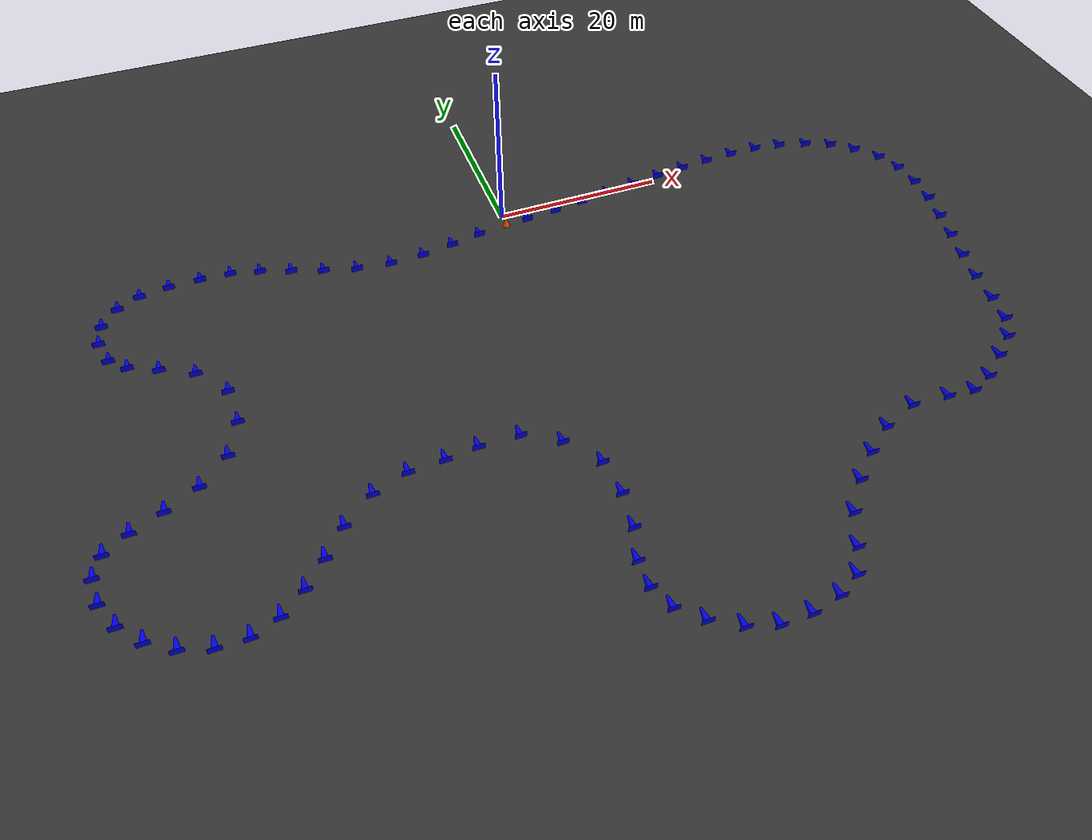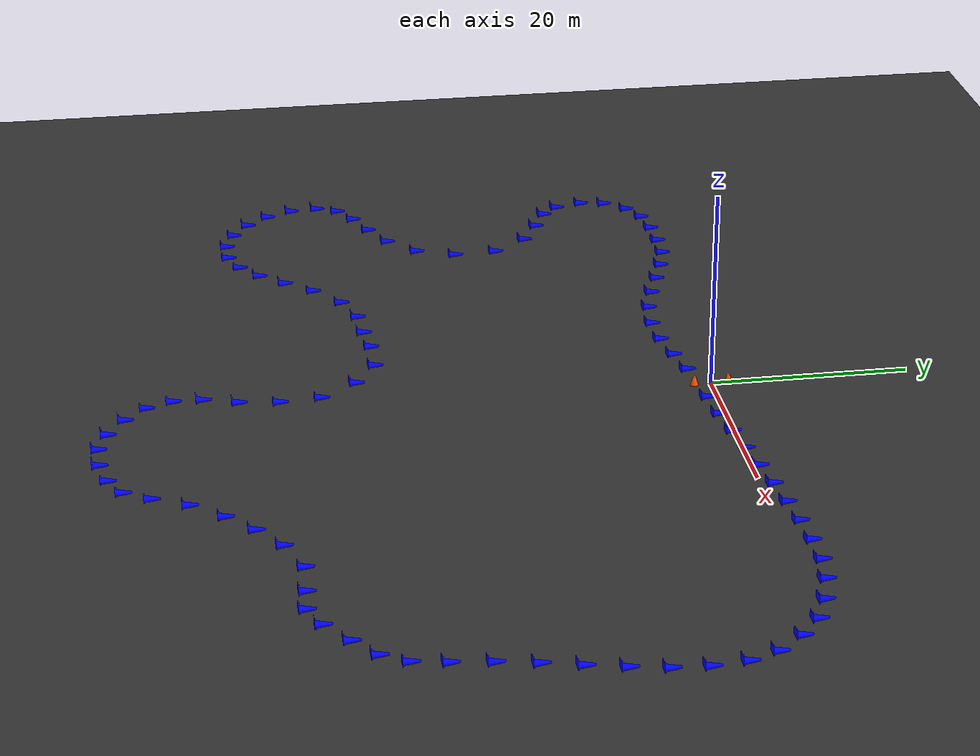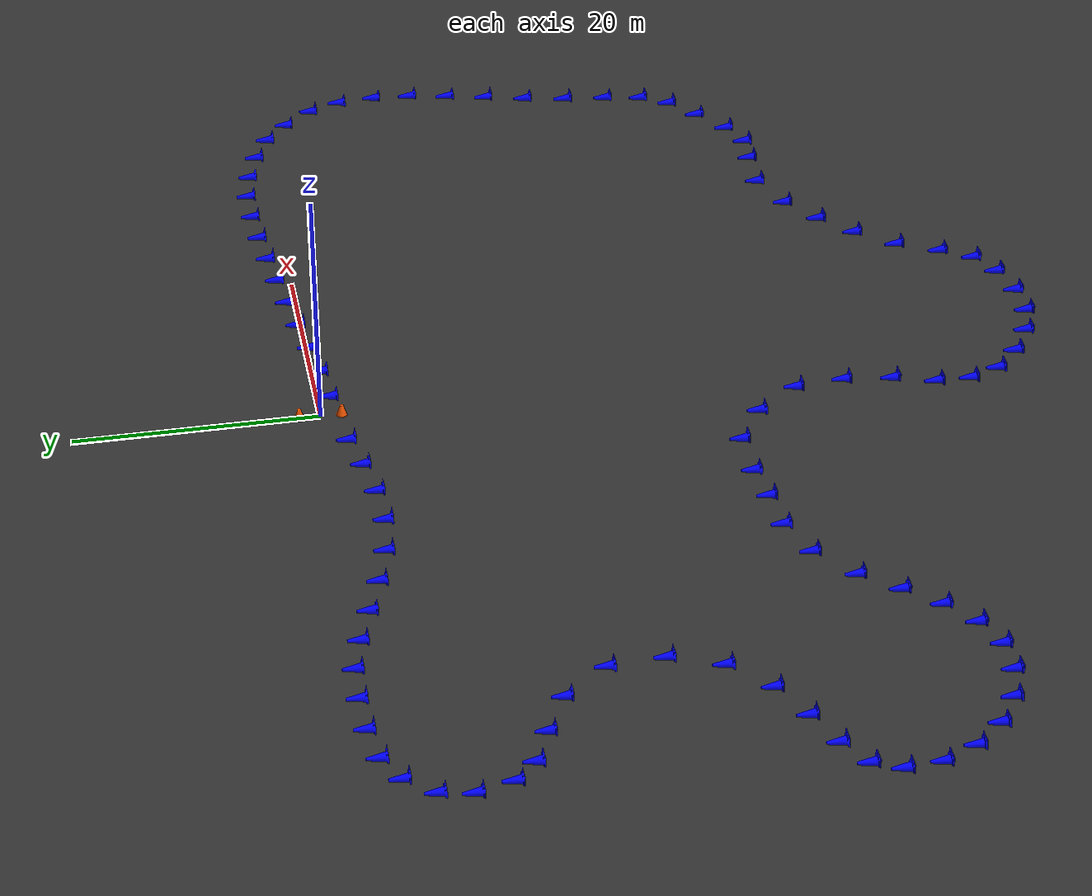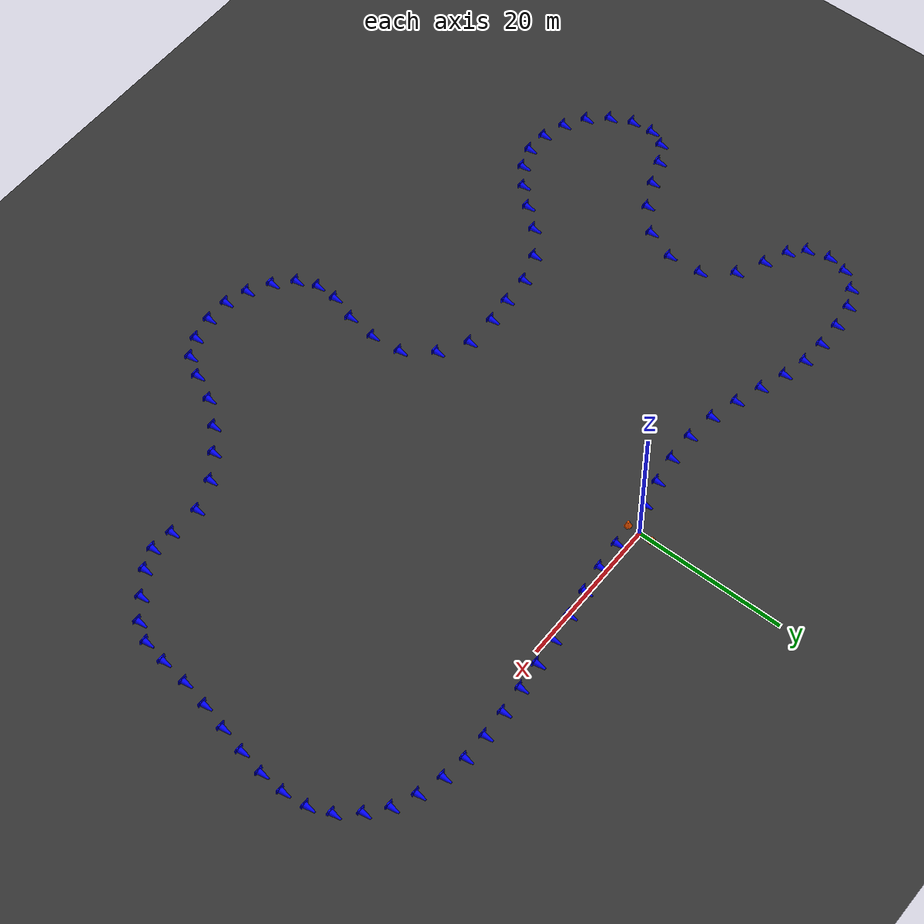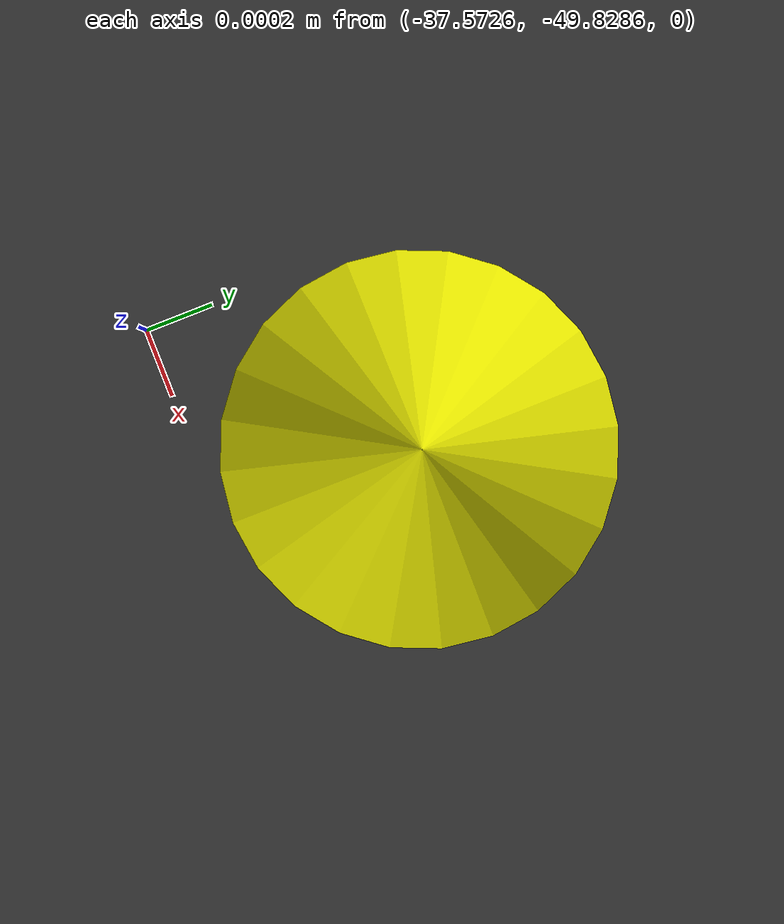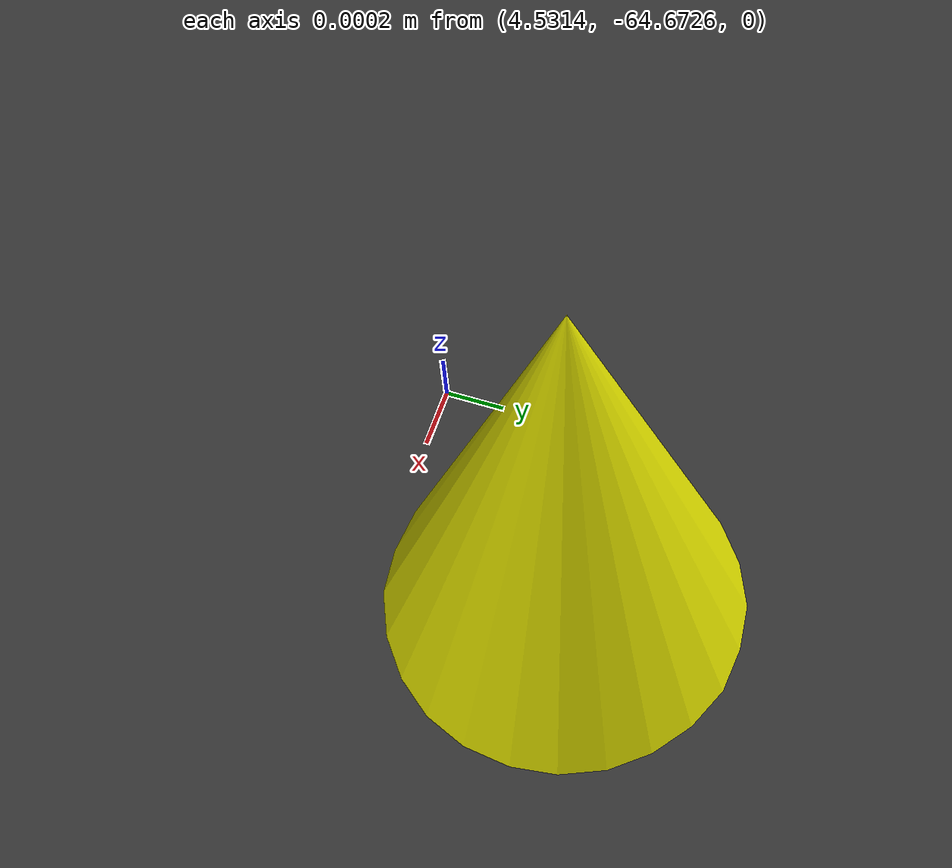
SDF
<sdf version="1.7">
 <world name="generated_world">
  <scene><sky><clouds><speed>12</speed></clouds></sky><grid>false</grid><shadows>1</shadows></scene>
  <physics type="ode">
   <max_step_size>0.001</max_step_size>
   <real_time_update_rate>1000</real_time_update_rate>
  </physics>
  <plugin filename="gz-sim-physics-system" name="gz::sim::systems::Physics"/>
  <plugin filename="gz-sim-user-commands-system" name="gz::sim::systems::UserCommands"/>
  <plugin filename="gz-sim-scene-broadcaster-system" name="gz::sim::systems::SceneBroadcaster"/>
  <plugin filename="gz-sim-contact-system" name="gz::sim::systems::Contact"/>
  <light name="sun" type="directional">
   <pose>0 0 10 0 0 0</pose>
   <diffuse>1 1 1 1</diffuse>
   <specular>0.2 0.2 0.2 1</specular>
   <direction>-0.5 0.2 -1</direction>
   <attenuation>
    <range>300</range>
    <constant>0.9</constant>
    <linear>0.01</linear>
    <quadratic>0.001</quadratic>
   </attenuation>
  </light>
  <model name="asphalt_ground">
   <static>1</static>
   <link name="link">
    <collision name="collision">
     <geometry><plane><normal>0 0 1</normal><size>300 300</size></plane></geometry>
     <surface><friction><ode><mu>100</mu><mu2>50</mu2></ode></friction></surface>
    </collision>
    <visual name="visual">
     <geometry><plane><normal>0 0 1</normal><size>300 300</size></plane></geometry>
     <material>
      <ambient>0.2 0.2 0.2 1</ambient>
      <diffuse>0.2 0.2 0.2 1</diffuse>
      <specular>0.1 0.1 0.1 1</specular>
     </material>
    </visual>
   </link>
  </model>
  <include><uri>model://cone_yellow</uri><name>cone_yellow_001</name><pose>2.761 1.924 0 0 0 0</pose></include>
  <include><uri>model://cone_yellow</uri><name>cone_yellow_002</name><pose>6.082 2.238 0 0 0 0</pose></include>
  <include><uri>model://cone_yellow</uri><name>cone_yellow_003</name><pose>9.714 2.728 0 0 0 0</pose></include>
  <include><uri>model://cone_yellow</uri><name>cone_yellow_004</name><pose>13.343 3.236 0 0 0 0</pose></include>
  <include><uri>model://cone_yellow</uri><name>cone_yellow_005</name><pose>16.992 3.733 0 0 0 0</pose></include>
  <include><uri>model://cone_yellow</uri><name>cone_yellow_006</name><pose>20.658 4.197 0 0 0 0</pose></include>
  <include><uri>model://cone_yellow</uri><name>cone_yellow_007</name><pose>24.330 4.608 0 0 0 0</pose></include>
  <include><uri>model://cone_yellow</uri><name>cone_yellow_008</name><pose>27.998 4.938 0 0 0 0</pose></include>
  <include><uri>model://cone_yellow</uri><name>cone_yellow_009</name><pose>31.738 5.146 0 0 0 0</pose></include>
  <include><uri>model://cone_yellow</uri><name>cone_yellow_010</name><pose>35.534 5.128 0 0 0 0</pose></include>
  <include><uri>model://cone_yellow</uri><name>cone_yellow_011</name><pose>39.480 4.555 0 0 0 0</pose></include>
  <include><uri>model://cone_yellow</uri><name>cone_yellow_012</name><pose>43.115 3.520 0 0 0 0</pose></include>
  <include><uri>model://cone_yellow</uri><name>cone_yellow_013</name><pose>46.774 1.903 0 0 0 0</pose></include>
  <include>
   <uri>model://cone_yellow</uri>
   <name>cone_yellow_014</name>
   <pose>49.954 -0.699 0 0 0 0</pose>
  </include>
  <include>
   <uri>model://cone_yellow</uri>
   <name>cone_yellow_015</name>
   <pose>52.499 -3.777 0 0 0 0</pose>
  </include>
  <include>
   <uri>model://cone_yellow</uri>
   <name>cone_yellow_016</name>
   <pose>54.072 -7.710 0 0 0 0</pose>
  </include>
  <include>
   <uri>model://cone_yellow</uri>
   <name>cone_yellow_017</name>
   <pose>54.478 -11.663 0 0 0 0</pose>
  </include>
  <include>
   <uri>model://cone_yellow</uri>
   <name>cone_yellow_018</name>
   <pose>54.219 -15.595 0 0 0 0</pose>
  </include>
  <include>
   <uri>model://cone_yellow</uri>
   <name>cone_yellow_019</name>
   <pose>53.518 -19.301 0 0 0 0</pose>
  </include>
  <include>
   <uri>model://cone_yellow</uri>
   <name>cone_yellow_020</name>
   <pose>52.670 -22.902 0 0 0 0</pose>
  </include>
  <include>
   <uri>model://cone_yellow</uri>
   <name>cone_yellow_021</name>
   <pose>51.803 -26.444 0 0 0 0</pose>
  </include>
  <include>
   <uri>model://cone_yellow</uri>
   <name>cone_yellow_022</name>
   <pose>51.103 -29.879 0 0 0 0</pose>
  </include>
  <include>
   <uri>model://cone_yellow</uri>
   <name>cone_yellow_023</name>
   <pose>50.642 -33.435 0 0 0 0</pose>
  </include>
  <include>
   <uri>model://cone_yellow</uri>
   <name>cone_yellow_024</name>
   <pose>49.904 -37.334 0 0 0 0</pose>
  </include>
  <include>
   <uri>model://cone_yellow</uri>
   <name>cone_yellow_025</name>
   <pose>47.665 -41.124 0 0 0 0</pose>
  </include>
  <include>
   <uri>model://cone_yellow</uri>
   <name>cone_yellow_026</name>
   <pose>44.582 -43.638 0 0 0 0</pose>
  </include>
  <include>
   <uri>model://cone_yellow</uri>
   <name>cone_yellow_027</name>
   <pose>41.616 -45.835 0 0 0 0</pose>
  </include>
  <include>
   <uri>model://cone_yellow</uri>
   <name>cone_yellow_028</name>
   <pose>37.628 -47.523 0 0 0 0</pose>
  </include>
  <include>
   <uri>model://cone_yellow</uri>
   <name>cone_yellow_029</name>
   <pose>33.393 -47.286 0 0 0 0</pose>
  </include>
  <include>
   <uri>model://cone_yellow</uri>
   <name>cone_yellow_030</name>
   <pose>30.263 -47.056 0 0 0 0</pose>
  </include>
  <include>
   <uri>model://cone_yellow</uri>
   <name>cone_yellow_031</name>
   <pose>27.596 -48.151 0 0 0 0</pose>
  </include>
  <include>
   <uri>model://cone_yellow</uri>
   <name>cone_yellow_032</name>
   <pose>24.838 -50.139 0 0 0 0</pose>
  </include>
  <include>
   <uri>model://cone_yellow</uri>
   <name>cone_yellow_033</name>
   <pose>22.243 -52.483 0 0 0 0</pose>
  </include>
  <include>
   <uri>model://cone_yellow</uri>
   <name>cone_yellow_034</name>
   <pose>20.177 -54.910 0 0 0 0</pose>
  </include>
  <include>
   <uri>model://cone_yellow</uri>
   <name>cone_yellow_035</name>
   <pose>18.652 -58.032 0 0 0 0</pose>
  </include>
  <include>
   <uri>model://cone_yellow</uri>
   <name>cone_yellow_036</name>
   <pose>16.358 -61.603 0 0 0 0</pose>
  </include>
  <include>
   <uri>model://cone_yellow</uri>
   <name>cone_yellow_037</name>
   <pose>12.540 -63.767 0 0 0 0</pose>
  </include>
  <include>
   <uri>model://cone_yellow</uri>
   <name>cone_yellow_038</name>
   <pose>8.616 -64.660 0 0 0 0</pose>
  </include>
  <include>
   <uri>model://cone_yellow</uri>
   <name>cone_yellow_039</name>
   <pose>4.532 -64.672 0 0 0 0</pose>
  </include>
  <include>
   <uri>model://cone_yellow</uri>
   <name>cone_yellow_040</name>
   <pose>0.552 -63.431 0 0 0 0</pose>
  </include>
  <include>
   <uri>model://cone_yellow</uri>
   <name>cone_yellow_041</name>
   <pose>-2.869 -61.361 0 0 0 0</pose>
  </include>
  <include>
   <uri>model://cone_yellow</uri>
   <name>cone_yellow_042</name>
   <pose>-5.848 -58.454 0 0 0 0</pose>
  </include>
  <include>
   <uri>model://cone_yellow</uri>
   <name>cone_yellow_043</name>
   <pose>-7.514 -54.376 0 0 0 0</pose>
  </include>
  <include>
   <uri>model://cone_yellow</uri>
   <name>cone_yellow_044</name>
   <pose>-7.404 -50.045 0 0 0 0</pose>
  </include>
  <include>
   <uri>model://cone_yellow</uri>
   <name>cone_yellow_045</name>
   <pose>-6.302 -46.547 0 0 0 0</pose>
  </include>
  <include>
   <uri>model://cone_yellow</uri>
   <name>cone_yellow_046</name>
   <pose>-5.899 -43.327 0 0 0 0</pose>
  </include>
  <include>
   <uri>model://cone_yellow</uri>
   <name>cone_yellow_047</name>
   <pose>-6.123 -40.192 0 0 0 0</pose>
  </include>
  <include>
   <uri>model://cone_yellow</uri>
   <name>cone_yellow_048</name>
   <pose>-7.745 -38.217 0 0 0 0</pose>
  </include>
  <include>
   <uri>model://cone_yellow</uri>
   <name>cone_yellow_049</name>
   <pose>-10.219 -36.622 0 0 0 0</pose>
  </include>
  <include>
   <uri>model://cone_yellow</uri>
   <name>cone_yellow_050</name>
   <pose>-13.101 -36.711 0 0 0 0</pose>
  </include>
  <include>
   <uri>model://cone_yellow</uri>
   <name>cone_yellow_051</name>
   <pose>-16.847 -37.138 0 0 0 0</pose>
  </include>
  <include>
   <uri>model://cone_yellow</uri>
   <name>cone_yellow_052</name>
   <pose>-20.239 -37.300 0 0 0 0</pose>
  </include>
  <include>
   <uri>model://cone_yellow</uri>
   <name>cone_yellow_053</name>
   <pose>-23.251 -38.396 0 0 0 0</pose>
  </include>
  <include>
   <uri>model://cone_yellow</uri>
   <name>cone_yellow_054</name>
   <pose>-25.514 -40.247 0 0 0 0</pose>
  </include>
  <include>
   <uri>model://cone_yellow</uri>
   <name>cone_yellow_055</name>
   <pose>-27.822 -43.005 0 0 0 0</pose>
  </include>
  <include>
   <uri>model://cone_yellow</uri>
   <name>cone_yellow_056</name>
   <pose>-30.413 -45.838 0 0 0 0</pose>
  </include>
  <include>
   <uri>model://cone_yellow</uri>
   <name>cone_yellow_057</name>
   <pose>-33.609 -48.325 0 0 0 0</pose>
  </include>
  <include>
   <uri>model://cone_yellow</uri>
   <name>cone_yellow_058</name>
   <pose>-37.572 -49.828 0 0 0 0</pose>
  </include>
  <include>
   <uri>model://cone_yellow</uri>
   <name>cone_yellow_059</name>
   <pose>-41.844 -49.796 0 0 0 0</pose>
  </include>
  <include>
   <uri>model://cone_yellow</uri>
   <name>cone_yellow_060</name>
   <pose>-45.756 -48.563 0 0 0 0</pose>
  </include>
  <include>
   <uri>model://cone_yellow</uri>
   <name>cone_yellow_061</name>
   <pose>-49.201 -46.321 0 0 0 0</pose>
  </include>
  <include>
   <uri>model://cone_yellow</uri>
   <name>cone_yellow_062</name>
   <pose>-51.912 -43.215 0 0 0 0</pose>
  </include>
  <include>
   <uri>model://cone_yellow</uri>
   <name>cone_yellow_063</name>
   <pose>-53.646 -39.414 0 0 0 0</pose>
  </include>
  <include>
   <uri>model://cone_yellow</uri>
   <name>cone_yellow_064</name>
   <pose>-53.982 -35.091 0 0 0 0</pose>
  </include>
  <include>
   <uri>model://cone_yellow</uri>
   <name>cone_yellow_065</name>
   <pose>-51.965 -30.865 0 0 0 0</pose>
  </include>
  <include>
   <uri>model://cone_yellow</uri>
   <name>cone_yellow_066</name>
   <pose>-48.384 -28.576 0 0 0 0</pose>
  </include>
  <include>
   <uri>model://cone_yellow</uri>
   <name>cone_yellow_067</name>
   <pose>-44.959 -27.157 0 0 0 0</pose>
  </include>
  <include>
   <uri>model://cone_yellow</uri>
   <name>cone_yellow_068</name>
   <pose>-41.953 -25.663 0 0 0 0</pose>
  </include>
  <include>
   <uri>model://cone_yellow</uri>
   <name>cone_yellow_069</name>
   <pose>-39.793 -23.692 0 0 0 0</pose>
  </include>
  <include>
   <uri>model://cone_yellow</uri>
   <name>cone_yellow_070</name>
   <pose>-38.779 -21.079 0 0 0 0</pose>
  </include>
  <include>
   <uri>model://cone_yellow</uri>
   <name>cone_yellow_071</name>
   <pose>-38.915 -18.225 0 0 0 0</pose>
  </include>
  <include>
   <uri>model://cone_yellow</uri>
   <name>cone_yellow_072</name>
   <pose>-40.438 -16.278 0 0 0 0</pose>
  </include>
  <include>
   <uri>model://cone_yellow</uri>
   <name>cone_yellow_073</name>
   <pose>-43.333 -14.799 0 0 0 0</pose>
  </include>
  <include>
   <uri>model://cone_yellow</uri>
   <name>cone_yellow_074</name>
   <pose>-46.866 -13.160 0 0 0 0</pose>
  </include>
  <include>
   <uri>model://cone_yellow</uri>
   <name>cone_yellow_075</name>
   <pose>-50.069 -9.806 0 0 0 0</pose>
  </include>
  <include>
   <uri>model://cone_yellow</uri>
   <name>cone_yellow_076</name>
   <pose>-51.143 -5.672 0 0 0 0</pose>
  </include>
  <include>
   <uri>model://cone_yellow</uri>
   <name>cone_yellow_077</name>
   <pose>-50.279 -1.236 0 0 0 0</pose>
  </include>
  <include>
   <uri>model://cone_yellow</uri>
   <name>cone_yellow_078</name>
   <pose>-47.532 2.099 0 0 0 0</pose>
  </include>
  <include>
   <uri>model://cone_yellow</uri>
   <name>cone_yellow_079</name>
   <pose>-43.612 4.071 0 0 0 0</pose>
  </include>
  <include>
   <uri>model://cone_yellow</uri>
   <name>cone_yellow_080</name>
   <pose>-39.686 4.644 0 0 0 0</pose>
  </include>
  <include>
   <uri>model://cone_yellow</uri>
   <name>cone_yellow_081</name>
   <pose>-35.885 4.718 0 0 0 0</pose>
  </include>
  <include>
   <uri>model://cone_yellow</uri>
   <name>cone_yellow_082</name>
   <pose>-32.051 4.513 0 0 0 0</pose>
  </include>
  <include>
   <uri>model://cone_yellow</uri>
   <name>cone_yellow_083</name>
   <pose>-28.213 3.571 0 0 0 0</pose>
  </include>
  <include>
   <uri>model://cone_yellow</uri>
   <name>cone_yellow_084</name>
   <pose>-24.699 2.362 0 0 0 0</pose>
  </include>
  <include>
   <uri>model://cone_yellow</uri>
   <name>cone_yellow_085</name>
   <pose>-21.289 1.178 0 0 0 0</pose>
  </include>
  <include>
   <uri>model://cone_yellow</uri>
   <name>cone_yellow_086</name>
   <pose>-17.935 0.235 0 0 0 0</pose>
  </include>
  <include>
   <uri>model://cone_yellow</uri>
   <name>cone_yellow_087</name>
   <pose>-14.632 -0.170 0 0 0 0</pose>
  </include>
  <include>
   <uri>model://cone_yellow</uri>
   <name>cone_yellow_088</name>
   <pose>-11.244 -0.049 0 0 0 0</pose>
  </include>
  <include><uri>model://cone_yellow</uri><name>cone_yellow_089</name><pose>-7.798 0.507 0 0 0 0</pose></include>
  <include><uri>model://cone_yellow</uri><name>cone_yellow_090</name><pose>-4.167 1.195 0 0 0 0</pose></include>
  <include><uri>model://cone_blue</uri><name>cone_blue_001</name><pose>2.769 -1.576 0 0 0 0</pose></include>
  <include><uri>model://cone_blue</uri><name>cone_blue_002</name><pose>6.520 -1.234 0 0 0 0</pose></include>
  <include><uri>model://cone_blue</uri><name>cone_blue_003</name><pose>10.197 -0.739 0 0 0 0</pose></include>
  <include><uri>model://cone_blue</uri><name>cone_blue_004</name><pose>13.826 -0.231 0 0 0 0</pose></include>
  <include><uri>model://cone_blue</uri><name>cone_blue_005</name><pose>17.451 0.263 0 0 0 0</pose></include>
  <include><uri>model://cone_blue</uri><name>cone_blue_006</name><pose>21.076 0.722 0 0 0 0</pose></include>
  <include><uri>model://cone_blue</uri><name>cone_blue_007</name><pose>24.686 1.126 0 0 0 0</pose></include>
  <include><uri>model://cone_blue</uri><name>cone_blue_008</name><pose>28.262 1.448 0 0 0 0</pose></include>
  <include><uri>model://cone_blue</uri><name>cone_blue_009</name><pose>31.850 1.647 0 0 0 0</pose></include>
  <include><uri>model://cone_blue</uri><name>cone_blue_010</name><pose>35.353 1.633 0 0 0 0</pose></include>
  <include><uri>model://cone_blue</uri><name>cone_blue_011</name><pose>38.650 1.155 0 0 0 0</pose></include>
  <include><uri>model://cone_blue</uri><name>cone_blue_012</name><pose>41.993 0.204 0 0 0 0</pose></include>
  <include><uri>model://cone_blue</uri><name>cone_blue_013</name><pose>44.996 -1.111 0 0 0 0</pose></include>
  <include><uri>model://cone_blue</uri><name>cone_blue_014</name><pose>47.412 -3.106 0 0 0 0</pose></include>
  <include><uri>model://cone_blue</uri><name>cone_blue_015</name><pose>49.535 -5.638 0 0 0 0</pose></include>
  <include><uri>model://cone_blue</uri><name>cone_blue_016</name><pose>50.651 -8.446 0 0 0 0</pose></include>
  <include><uri>model://cone_blue</uri><name>cone_blue_017</name><pose>50.979 -11.729 0 0 0 0</pose></include>
  <include><uri>model://cone_blue</uri><name>cone_blue_018</name><pose>50.756 -15.083 0 0 0 0</pose></include>
  <include><uri>model://cone_blue</uri><name>cone_blue_019</name><pose>50.099 -18.550 0 0 0 0</pose></include>
  <include><uri>model://cone_blue</uri><name>cone_blue_020</name><pose>49.271 -22.066 0 0 0 0</pose></include>
  <include><uri>model://cone_blue</uri><name>cone_blue_021</name><pose>48.397 -25.638 0 0 0 0</pose></include>
  <include><uri>model://cone_blue</uri><name>cone_blue_022</name><pose>47.647 -29.326 0 0 0 0</pose></include>
  <include><uri>model://cone_blue</uri><name>cone_blue_023</name><pose>47.166 -33.019 0 0 0 0</pose></include>
  <include><uri>model://cone_blue</uri><name>cone_blue_024</name><pose>46.569 -36.274 0 0 0 0</pose></include>
  <include><uri>model://cone_blue</uri><name>cone_blue_025</name><pose>45.130 -38.711 0 0 0 0</pose></include>
  <include><uri>model://cone_blue</uri><name>cone_blue_026</name><pose>42.550 -40.788 0 0 0 0</pose></include>
  <include><uri>model://cone_blue</uri><name>cone_blue_027</name><pose>39.656 -42.935 0 0 0 0</pose></include>
  <include><uri>model://cone_blue</uri><name>cone_blue_028</name><pose>36.981 -44.084 0 0 0 0</pose></include>
  <include><uri>model://cone_blue</uri><name>cone_blue_029</name><pose>33.972 -43.835 0 0 0 0</pose></include>
  <include><uri>model://cone_blue</uri><name>cone_blue_030</name><pose>29.841 -43.582 0 0 0 0</pose></include>
  <include><uri>model://cone_blue</uri><name>cone_blue_031</name><pose>25.784 -45.157 0 0 0 0</pose></include>
  <include><uri>model://cone_blue</uri><name>cone_blue_032</name><pose>22.616 -47.434 0 0 0 0</pose></include>
  <include><uri>model://cone_blue</uri><name>cone_blue_033</name><pose>19.786 -49.990 0 0 0 0</pose></include>
  <include><uri>model://cone_blue</uri><name>cone_blue_034</name><pose>17.172 -53.117 0 0 0 0</pose></include>
  <include><uri>model://cone_blue</uri><name>cone_blue_035</name><pose>15.481 -56.551 0 0 0 0</pose></include>
  <include><uri>model://cone_blue</uri><name>cone_blue_036</name><pose>13.896 -59.114 0 0 0 0</pose></include>
  <include><uri>model://cone_blue</uri><name>cone_blue_037</name><pose>11.392 -60.461 0 0 0 0</pose></include>
  <include><uri>model://cone_blue</uri><name>cone_blue_038</name><pose>8.199 -61.185 0 0 0 0</pose></include>
  <include><uri>model://cone_blue</uri><name>cone_blue_039</name><pose>4.995 -61.203 0 0 0 0</pose></include>
  <include><uri>model://cone_blue</uri><name>cone_blue_040</name><pose>2.052 -60.269 0 0 0 0</pose></include>
  <include><uri>model://cone_blue</uri><name>cone_blue_041</name><pose>-0.770 -58.561 0 0 0 0</pose></include>
  <include><uri>model://cone_blue</uri><name>cone_blue_042</name><pose>-3.014 -56.401 0 0 0 0</pose></include>
  <include><uri>model://cone_blue</uri><name>cone_blue_043</name><pose>-4.066 -53.778 0 0 0 0</pose></include>
  <include><uri>model://cone_blue</uri><name>cone_blue_044</name><pose>-3.999 -50.856 0 0 0 0</pose></include>
  <include><uri>model://cone_blue</uri><name>cone_blue_045</name><pose>-2.907 -47.397 0 0 0 0</pose></include>
  <include><uri>model://cone_blue</uri><name>cone_blue_046</name><pose>-2.399 -43.398 0 0 0 0</pose></include>
  <include><uri>model://cone_blue</uri><name>cone_blue_047</name><pose>-2.747 -39.271 0 0 0 0</pose></include>
  <include><uri>model://cone_blue</uri><name>cone_blue_048</name><pose>-5.479 -35.549 0 0 0 0</pose></include>
  <include><uri>model://cone_blue</uri><name>cone_blue_049</name><pose>-9.154 -33.288 0 0 0 0</pose></include>
  <include><uri>model://cone_blue</uri><name>cone_blue_050</name><pose>-13.529 -33.238 0 0 0 0</pose></include>
  <include><uri>model://cone_blue</uri><name>cone_blue_051</name><pose>-17.052 -33.644 0 0 0 0</pose></include>
  <include><uri>model://cone_blue</uri><name>cone_blue_052</name><pose>-20.908 -33.865 0 0 0 0</pose></include>
  <include><uri>model://cone_blue</uri><name>cone_blue_053</name><pose>-24.724 -35.221 0 0 0 0</pose></include>
  <include><uri>model://cone_blue</uri><name>cone_blue_054</name><pose>-28.126 -37.918 0 0 0 0</pose></include>
  <include><uri>model://cone_blue</uri><name>cone_blue_055</name><pose>-30.507 -40.759 0 0 0 0</pose></include>
  <include><uri>model://cone_blue</uri><name>cone_blue_056</name><pose>-32.843 -43.319 0 0 0 0</pose></include>
  <include><uri>model://cone_blue</uri><name>cone_blue_057</name><pose>-35.391 -45.313 0 0 0 0</pose></include>
  <include><uri>model://cone_blue</uri><name>cone_blue_058</name><pose>-38.192 -46.384 0 0 0 0</pose></include>
  <include><uri>model://cone_blue</uri><name>cone_blue_059</name><pose>-41.238 -46.349 0 0 0 0</pose></include>
  <include><uri>model://cone_blue</uri><name>cone_blue_060</name><pose>-44.267 -45.396 0 0 0 0</pose></include>
  <include><uri>model://cone_blue</uri><name>cone_blue_061</name><pose>-46.908 -43.677 0 0 0 0</pose></include>
  <include><uri>model://cone_blue</uri><name>cone_blue_062</name><pose>-48.980 -41.304 0 0 0 0</pose></include>
  <include><uri>model://cone_blue</uri><name>cone_blue_063</name><pose>-50.274 -38.478 0 0 0 0</pose></include>
  <include><uri>model://cone_blue</uri><name>cone_blue_064</name><pose>-50.516 -35.576 0 0 0 0</pose></include>
  <include><uri>model://cone_blue</uri><name>cone_blue_065</name><pose>-49.495 -33.344 0 0 0 0</pose></include>
  <include><uri>model://cone_blue</uri><name>cone_blue_066</name><pose>-46.941 -31.765 0 0 0 0</pose></include>
  <include><uri>model://cone_blue</uri><name>cone_blue_067</name><pose>-43.611 -30.387 0 0 0 0</pose></include>
  <include><uri>model://cone_blue</uri><name>cone_blue_068</name><pose>-40.079 -28.619 0 0 0 0</pose></include>
  <include><uri>model://cone_blue</uri><name>cone_blue_069</name><pose>-36.927 -25.702 0 0 0 0</pose></include>
  <include><uri>model://cone_blue</uri><name>cone_blue_070</name><pose>-35.320 -21.613 0 0 0 0</pose></include>
  <include><uri>model://cone_blue</uri><name>cone_blue_071</name><pose>-35.597 -17.111 0 0 0 0</pose></include>
  <include><uri>model://cone_blue</uri><name>cone_blue_072</name><pose>-38.395 -13.436 0 0 0 0</pose></include>
  <include><uri>model://cone_blue</uri><name>cone_blue_073</name><pose>-41.982 -11.570 0 0 0 0</pose></include>
  <include><uri>model://cone_blue</uri><name>cone_blue_074</name><pose>-45.091 -10.144 0 0 0 0</pose></include>
  <include><uri>model://cone_blue</uri><name>cone_blue_075</name><pose>-46.878 -8.366 0 0 0 0</pose></include>
  <include><uri>model://cone_blue</uri><name>cone_blue_076</name><pose>-47.652 -5.430 0 0 0 0</pose></include>
  <include><uri>model://cone_blue</uri><name>cone_blue_077</name><pose>-47.154 -2.812 0 0 0 0</pose></include>
  <include><uri>model://cone_blue</uri><name>cone_blue_078</name><pose>-45.271 -0.572 0 0 0 0</pose></include>
  <include><uri>model://cone_blue</uri><name>cone_blue_079</name><pose>-42.751 0.679 0 0 0 0</pose></include>
  <include><uri>model://cone_blue</uri><name>cone_blue_080</name><pose>-39.455 1.152 0 0 0 0</pose></include>
  <include><uri>model://cone_blue</uri><name>cone_blue_081</name><pose>-35.949 1.218 0 0 0 0</pose></include>
  <include><uri>model://cone_blue</uri><name>cone_blue_082</name><pose>-32.539 1.047 0 0 0 0</pose></include>
  <include><uri>model://cone_blue</uri><name>cone_blue_083</name><pose>-29.271 0.235 0 0 0 0</pose></include>
  <include><uri>model://cone_blue</uri><name>cone_blue_084</name><pose>-25.876 -0.934 0 0 0 0</pose></include>
  <include><uri>model://cone_blue</uri><name>cone_blue_085</name><pose>-22.375 -2.149 0 0 0 0</pose></include>
  <include><uri>model://cone_blue</uri><name>cone_blue_086</name><pose>-18.688 -3.183 0 0 0 0</pose></include>
  <include><uri>model://cone_blue</uri><name>cone_blue_087</name><pose>-14.756 -3.668 0 0 0 0</pose></include>
  <include><uri>model://cone_blue</uri><name>cone_blue_088</name><pose>-10.869 -3.529 0 0 0 0</pose></include>
  <include><uri>model://cone_blue</uri><name>cone_blue_089</name><pose>-7.127 -2.928 0 0 0 0</pose></include>
  <include><uri>model://cone_blue</uri><name>cone_blue_090</name><pose>-3.586 -2.256 0 0 0 0</pose></include>
  <include>
   <uri>model://cone_orange_big</uri>
   <name>cone_orange_big_001</name>
   <pose>0.000 -1.726 0 0 0 0</pose>
  </include>
  <include>
   <uri>model://cone_orange_big</uri>
   <name>cone_orange_big_002</name>
   <pose>0.000 1.726 0 0 0 0</pose>
  </include>
 </world>
</sdf>

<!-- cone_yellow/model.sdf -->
<sdf version="1.6">
  <model name="cone_yellow">
    <static>1</static>
    <link name="link">

      <visual name="visual">
        <pose>0 0 0 0 0 0</pose>
        <geometry>
          <mesh>
            <uri>model://cone_yellow/meshes/cone.stl</uri>
            <scale>0.005 0.005 0.005</scale>
          </mesh>
        </geometry>
        <material>
          <ambient>1.0 1.0 0.0 1</ambient>
          <diffuse>1.0 1.0 0.0 1</diffuse>
        </material>
      </visual>

      <collision name="collision">
        <pose>0 0 0.15 0 0 0</pose>
        <geometry>
          <cylinder>
            <radius>0.1</radius>
            <length>0.3</length>
          </cylinder>
        </geometry>
        <surface>
          <friction>
            <ode>
              <mu>0.9</mu> <mu2>0.9</mu2> </ode>
          </friction>
        </surface>
      </collision>

      <inertial>
        <pose>0 0 0.05 0 0 0</pose>
        <mass>1</mass>
        <inertia>
          <ixx>0.01</ixx> <iyy>0.01</iyy> <izz>0.005</izz>
          <ixy>0.0</ixy> <ixz>0.0</ixz> <iyz>0.0</iyz>
        </inertia>
      </inertial>

    </link>
  </model>
</sdf>

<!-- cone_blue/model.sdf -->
<sdf version="1.6">
  <model name="cone_blue">
    <static>1</static>
    <link name="link">

      <inertial>
        <pose>0 0 0.05 0 0 0</pose> <mass>1</mass>
        <inertia>
          <ixx>0.01</ixx> <iyy>0.01</iyy> <izz>0.005</izz>
          <ixy>0.0</ixy> <ixz>0.0</ixz> <iyz>0.0</iyz>
        </inertia>
      </inertial>

      <collision name="collision">
        <pose>0 0 0.15 0 0 0</pose>
        <geometry>
          <cylinder>
            <radius>0.1</radius>
            <length>0.3</length>
          </cylinder>
        </geometry>
      </collision>

      <visual name="visual">
        <pose>0 0 0 0 0 0</pose>
        <geometry>
          <mesh>
            <uri>model://cone_blue/meshes/cone.stl</uri>
            <scale>0.005 0.005 0.005</scale>
          </mesh>
        </geometry>
        <material>
          <ambient>0.0 0.0 1.0 1</ambient>
          <diffuse>0.0 0.0 1.0 1</diffuse>
        </material>
      </visual>

    </link>
  </model>
</sdf>

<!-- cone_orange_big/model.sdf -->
<sdf version="1.6">
  <model name="cone_orange_big">
    <static>1</static>
    <link name="link">
      <visual name="visual">
        <geometry>
          <mesh>
            <uri>model://cone_orange_big/meshes/cone.stl</uri>
            <scale>0.0112 0.0112 0.0112</scale>
          </mesh>
        </geometry>
        <material>
          <ambient>1.0 0.35 0.0 1</ambient>
	  <diffuse>1.0 0.35 0.0 1</diffuse>
        </material>
      </visual>
      <collision name="collision">
        <geometry>
          <mesh>
            <uri>model://cone_orange_big/meshes/cone.stl</uri>
            <scale>0.0112 0.0112 0.0112</scale>
          </mesh>
        </geometry>
      </collision>
      <inertial>
        <mass>0.1</mass>
        <inertia>
          <ixx>0.0001</ixx>
          <iyy>0.0001</iyy>
          <izz>0.0001</izz>
          <ixy>0.0</ixy>
          <ixz>0.0</ixz>
          <iyz>0.0</iyz>
        </inertia>
      </inertial>
    </link>
  </model>
</sdf>
